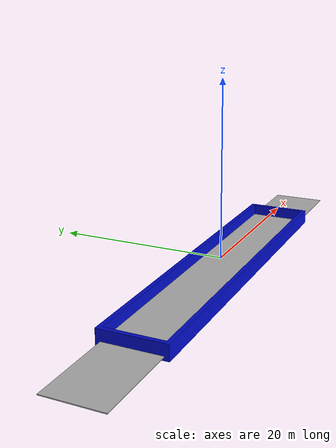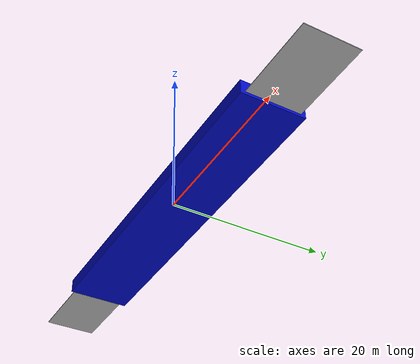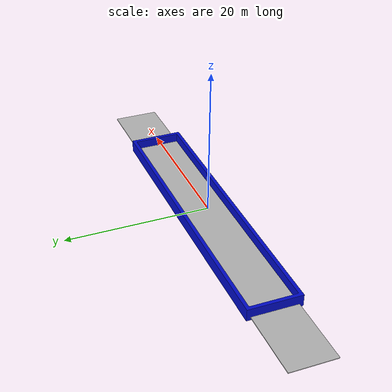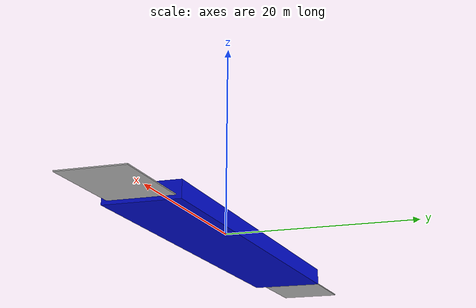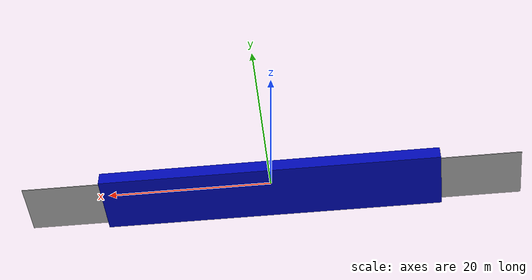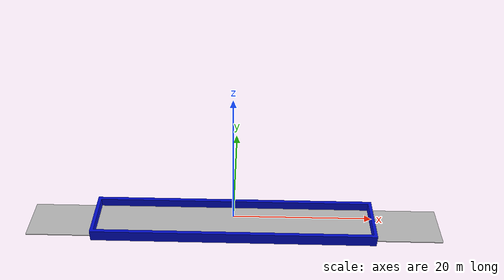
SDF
<?xml version='1.0'?>
<sdf version='1.5'>

  <model name='transdec_pool'>
    <pose>0 0 0 0 0 0</pose>
    <self_collide> 0 </self_collide>
    <static> 1</static>

    <link name='pool'>
      <pose>0 0 0 0 0 0</pose>
      <visual name='pool_visual'>
        <geometry>
            <mesh><uri>file://cybernetics_pool/cybernetics_pool.dae</uri></mesh>
        </geometry>
        <material>
          <script>
            <uri>file://media/materials/scripts/sand.material</uri>
            <name>UUVSimulator/SandAndStones</name>
          </script>
          <emissive>
            0.2 0.2 0.2 1.0
          </emissive>
        </material>
      </visual>
      <collision name='pool_collision'>
        <geometry>
            <mesh><uri>file://cybernetics_pool/cybernetics_pool.dae</uri></mesh>
        </geometry>
      </collision>

    <visual name="ground">
        <cast_shadows>false</cast_shadows>
        <pose>0 0 -1.3 0 0 0</pose>
        <geometry>
          <box>
            <size>60 6.45 .1</size>
          </box>
        </geometry>
        <material>
          <script>
            <uri>file://media/materials/scripts/sand.material</uri>
            <name>UUVSimulator/SandAndStones</name>
          </script>
        </material>
      </visual>

    </link>

  </model>
</sdf>
